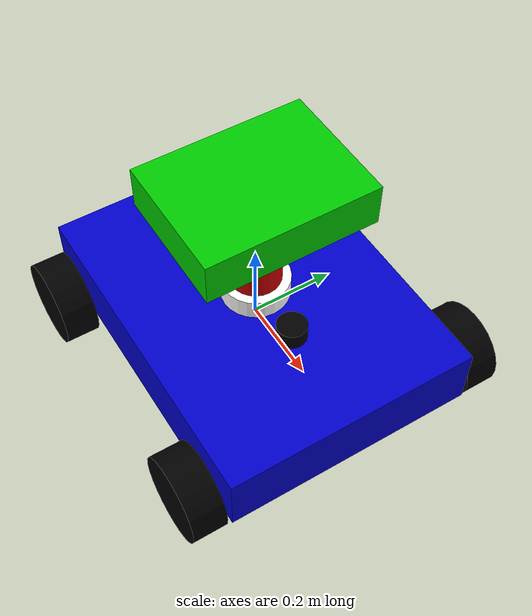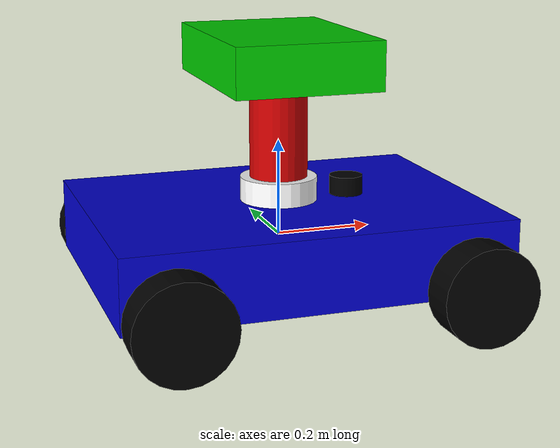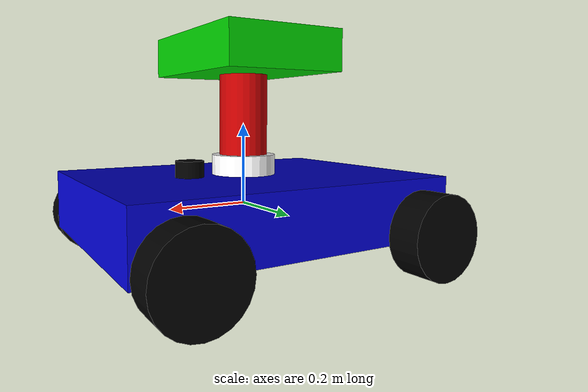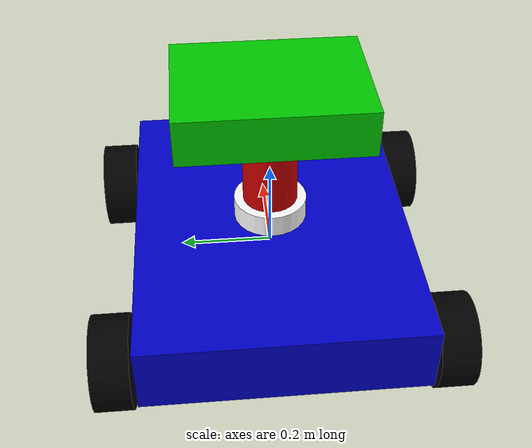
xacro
<?xml version="1.0"?>
<robot name="4wd_lift_robot" xmlns:xacro="http://www.ros.org/wiki/xacro">

  <!-- Properties for easy customization -->
  <xacro:property name="base_width" value="0.6"/>
  <xacro:property name="base_length" value="0.8"/>
  <xacro:property name="base_height" value="0.15"/>
  <xacro:property name="wheel_radius" value="0.1"/>
  <xacro:property name="wheel_width" value="0.08"/>
  <xacro:property name="wheel_offset_x" value="0.3"/>
  <xacro:property name="wheel_offset_y" value="0.35"/>
  <xacro:property name="wheel_offset_z" value="-0.05"/>
  <xacro:property name="lift_height_min" value="0.0"/>
  <xacro:property name="lift_height_max" value="0.5"/>
  <xacro:property name="cradle_width" value="0.4"/>
  <xacro:property name="cradle_length" value="0.3"/>
  <xacro:property name="cradle_height" value="0.1"/>

  <!-- Materials -->
  <material name="blue">
    <color rgba="0 0 0.8 1"/>
  </material>

  <material name="black">
    <color rgba="0 0 0 1"/>
  </material>

  <material name="white">
    <color rgba="1 1 1 1"/>
  </material>

  <material name="red">
    <color rgba="0.8 0.0 0.0 1.0"/>
  </material>

  <material name="green">
    <color rgba="0.0 0.8 0.0 1.0"/>
  </material>

  <!-- Base Link (Main Chassis) -->
  <link name="base_link">
    <visual>
      <origin xyz="0 0 0" rpy="0 0 0"/>
      <geometry>
        <box size="${base_length} ${base_width} ${base_height}"/>
      </geometry>
      <material name="blue"/>
    </visual>
    <collision>
      <origin xyz="0 0 0" rpy="0 0 0"/>
      <geometry>
        <box size="${base_length} ${base_width} ${base_height}"/>
      </geometry>
    </collision>
    <inertial>
      <mass value="20.0"/>
      <origin xyz="0 0 0" rpy="0 0 0"/>
      <inertia ixx="1.0" ixy="0.0" ixz="0.0" iyy="1.0" iyz="0.0" izz="1.0"/>
    </inertial>
  </link>

  <!-- Wheel Macro -->
  <xacro:macro name="wheel" params="name x y z">
    <link name="${name}_wheel">
      <visual>
        <origin xyz="0 0 0" rpy="1.5708 0 0"/>
        <geometry>
          <cylinder length="${wheel_width}" radius="${wheel_radius}"/>
        </geometry>
        <material name="black"/>
      </visual>
      <collision>
        <origin xyz="0 0 0" rpy="1.5708 0 0"/>
        <geometry>
          <cylinder length="${wheel_width}" radius="${wheel_radius}"/>
        </geometry>
      </collision>
      <inertial>
        <mass value="2.5"/>
        <origin xyz="0 0 0" rpy="1.5708 0 0"/>
        <inertia ixx="0.01" ixy="0.0" ixz="0.0" iyy="0.005" iyz="0.0" izz="0.005"/>
      </inertial>
    </link>

    <joint name="${name}_wheel_joint" type="continuous">
      <parent link="base_link"/>
      <child link="${name}_wheel"/>
      <origin xyz="${x} ${y} ${z}" rpy="0 0 0"/>
      <axis xyz="0 1 0"/>
    </joint>
  </xacro:macro>

  <!-- Create all four wheels -->
  <xacro:wheel name="front_left" x="${wheel_offset_x}" y="${wheel_offset_y}" z="${wheel_offset_z}"/>
  <xacro:wheel name="front_right" x="${wheel_offset_x}" y="${-wheel_offset_y}" z="${wheel_offset_z}"/>
  <xacro:wheel name="rear_left" x="${-wheel_offset_x}" y="${wheel_offset_y}" z="${wheel_offset_z}"/>
  <xacro:wheel name="rear_right" x="${-wheel_offset_x}" y="${-wheel_offset_y}" z="${wheel_offset_z}"/>

  <!-- Hydraulic Lift Base -->
  <link name="lift_base">
    <visual>
      <origin xyz="0 0 0" rpy="0 0 0"/>
      <geometry>
        <cylinder length="0.05" radius="0.08"/>
      </geometry>
      <material name="white"/>
    </visual>
    <collision>
      <origin xyz="0 0 0" rpy="0 0 0"/>
      <geometry>
        <cylinder length="0.05" radius="0.08"/>
      </geometry>
    </collision>
    <inertial>
      <mass value="2.0"/>
      <origin xyz="0 0 0" rpy="0 0 0"/>
      <inertia ixx="0.01" ixy="0.0" ixz="0.0" iyy="0.01" iyz="0.0" izz="0.01"/>
    </inertial>
  </link>

  <joint name="lift_base_joint" type="fixed">
    <parent link="base_link"/>
    <child link="lift_base"/>
    <origin xyz="0 0 ${base_height/2 + 0.025}" rpy="0 0 0"/>
  </joint>

  <!-- Hydraulic Lift Piston -->
  <link name="lift_piston">
    <visual>
      <origin xyz="0 0 0.1" rpy="0 0 0"/>
      <geometry>
        <cylinder length="0.2" radius="0.06"/>
      </geometry>
      <material name="red"/>
    </visual>
    <collision>
      <origin xyz="0 0 0.1" rpy="0 0 0"/>
      <geometry>
        <cylinder length="0.2" radius="0.06"/>
      </geometry>
    </collision>
    <inertial>
      <mass value="3.0"/>
      <origin xyz="0 0 0.1" rpy="0 0 0"/>
      <inertia ixx="0.02" ixy="0.0" ixz="0.0" iyy="0.02" iyz="0.0" izz="0.01"/>
    </inertial>
  </link>

  <joint name="lift_joint" type="prismatic">
    <parent link="lift_base"/>
    <child link="lift_piston"/>
    <origin xyz="0 0 0.025" rpy="0 0 0"/>
    <axis xyz="0 0 1"/>
    <limit lower="${lift_height_min}" upper="${lift_height_max}" effort="1000.0" velocity="0.5"/>
  </joint>

  <!-- V-Cradle Platform -->
  <link name="cradle_platform">
    <visual>
      <origin xyz="0 0 0" rpy="0 0 0"/>
      <geometry>
        <box size="${cradle_length} ${cradle_width} ${cradle_height}"/>
      </geometry>
      <material name="green"/>
    </visual>
    <collision>
      <origin xyz="0 0 0" rpy="0 0 0"/>
      <geometry>
        <box size="${cradle_length} ${cradle_width} ${cradle_height}"/>
      </geometry>
    </collision>
    <inertial>
      <mass value="5.0"/>
      <origin xyz="0 0 0" rpy="0 0 0"/>
      <inertia ixx="0.1" ixy="0.0" ixz="0.0" iyy="0.1" iyz="0.0" izz="0.1"/>
    </inertial>
  </link>

  <joint name="cradle_joint" type="fixed">
    <parent link="lift_piston"/>
    <child link="cradle_platform"/>
    <origin xyz="0 0 0.25" rpy="0 0 0"/>
  </joint>

  <!-- LiDAR Sensor - Fixed frame name consistency -->
  <link name="lidar_link">
    <visual>
      <origin xyz="0 0 0" rpy="0 0 0"/>
      <geometry>
        <cylinder length="0.04" radius="0.035"/>
      </geometry>
      <material name="black"/>
    </visual>
    <collision>
      <origin xyz="0 0 0" rpy="0 0 0"/>
      <geometry>
        <cylinder length="0.04" radius="0.035"/>
      </geometry>
    </collision>
    <inertial>
      <mass value="0.3"/>
      <origin xyz="0 0 0" rpy="0 0 0"/>
      <inertia ixx="0.001" ixy="0.0" ixz="0.0" iyy="0.001" iyz="0.0" izz="0.001"/>
    </inertial>
  </link>

  <joint name="lidar_joint" type="fixed">
    <parent link="base_link"/>
    <child link="lidar_link"/>
    <origin xyz="0.15 0 ${base_height/2 + 0.02}" rpy="0 0 0"/>
  </joint>

  <!-- ROS2 Control interface -->
  <ros2_control name="GazeboSystem" type="system">
    <hardware>
      <plugin>gazebo_ros2_control/GazeboSystem</plugin>
    </hardware>

    <!-- Wheel joints -->
    <joint name="front_left_wheel_joint">
      <command_interface name="velocity">
        <param name="min">-10</param>
        <param name="max">10</param>
      </command_interface>
      <state_interface name="velocity"/>
      <state_interface name="position"/>
    </joint>

    <joint name="front_right_wheel_joint">
      <command_interface name="velocity">
        <param name="min">-10</param>
        <param name="max">10</param>
      </command_interface>
      <state_interface name="velocity"/>
      <state_interface name="position"/>
    </joint>

    <joint name="rear_left_wheel_joint">
      <command_interface name="velocity">
        <param name="min">-10</param>
        <param name="max">10</param>
      </command_interface>
      <state_interface name="velocity"/>
      <state_interface name="position"/>
    </joint>

    <joint name="rear_right_wheel_joint">
      <command_interface name="velocity">
        <param name="min">-10</param>
        <param name="max">10</param>
      </command_interface>
      <state_interface name="velocity"/>
      <state_interface name="position"/>
    </joint>

    <!-- Lift joint -->
    <joint name="lift_joint">
      <command_interface name="position">
        <param name="min">0</param>
        <param name="max">0.5</param>
      </command_interface>
      <state_interface name="position"/>
      <state_interface name="velocity"/>
    </joint>
  </ros2_control>

  <!-- Gazebo plugin for ros2_control -->
  <gazebo>
    <plugin filename="libgazebo_ros2_control.so" name="gazebo_ros2_control">
      <parameters>$(find wd_lift_robot)/config/controllers.yaml</parameters>
    </plugin>
  </gazebo>

  <!-- Gazebo-specific configurations -->
  <gazebo reference="base_link">
    <material>Gazebo/Blue</material>
  </gazebo>

  <!-- Wheel physics with correct friction -->
  <gazebo reference="front_left_wheel">
    <material>Gazebo/Black</material>
    <mu1>1.0</mu1>
    <mu2>1.0</mu2>
    <kp>500000.0</kp>
    <kd>10.0</kd>
    <minDepth>0.001</minDepth>
    <maxVel>0.1</maxVel>
    <fdir1>1 0 0</fdir1>
  </gazebo>

  <gazebo reference="front_right_wheel">
    <material>Gazebo/Black</material>
    <mu1>1.0</mu1>
    <mu2>1.0</mu2>
    <kp>500000.0</kp>
    <kd>10.0</kd>
    <minDepth>0.001</minDepth>
    <maxVel>0.1</maxVel>
    <fdir1>1 0 0</fdir1>
  </gazebo>

  <gazebo reference="rear_left_wheel">
    <material>Gazebo/Black</material>
    <mu1>1.0</mu1>
    <mu2>1.0</mu2>
    <kp>500000.0</kp>
    <kd>10.0</kd>
    <minDepth>0.001</minDepth>
    <maxVel>0.1</maxVel>
    <fdir1>1 0 0</fdir1>
  </gazebo>

  <gazebo reference="rear_right_wheel">
    <material>Gazebo/Black</material>
    <mu1>1.0</mu1>
    <mu2>1.0</mu2>
    <kp>500000.0</kp>
    <kd>10.0</kd>
    <minDepth>0.001</minDepth>
    <maxVel>0.1</maxVel>
    <fdir1>1 0 0</fdir1>
  </gazebo>

  <!-- LiDAR sensor plugin with correct frame name -->
  <gazebo reference="lidar_link">
    <material>Gazebo/Black</material>
    <sensor type="ray" name="rplidar_a1">
      <pose>0 0 0 0 0 0</pose>
      <visualize>true</visualize>
      <update_rate>15</update_rate>
      <ray>
        <scan>
          <horizontal>
            <samples>360</samples>
            <resolution>1</resolution>
            <min_angle>-3.14159265</min_angle>
            <max_angle>3.14159265</max_angle>
          </horizontal>
        </scan>
        <range>
          <min>0.15</min>
          <max>12.0</max>
          <resolution>0.01</resolution>
        </range>
        <noise>
          <type>gaussian</type>
          <mean>0.0</mean>
          <stddev>0.01</stddev>
        </noise>
      </ray>
      <plugin name="gazebo_ros_laser" filename="libgazebo_ros_ray_sensor.so">
        <ros>
          <namespace>/</namespace>
          <remapping>~/out:=scan</remapping>
        </ros>
        <output_type>sensor_msgs/LaserScan</output_type>
        <frame_name>lidar_link</frame_name>
      </plugin>
    </sensor>
  </gazebo>

</robot>
